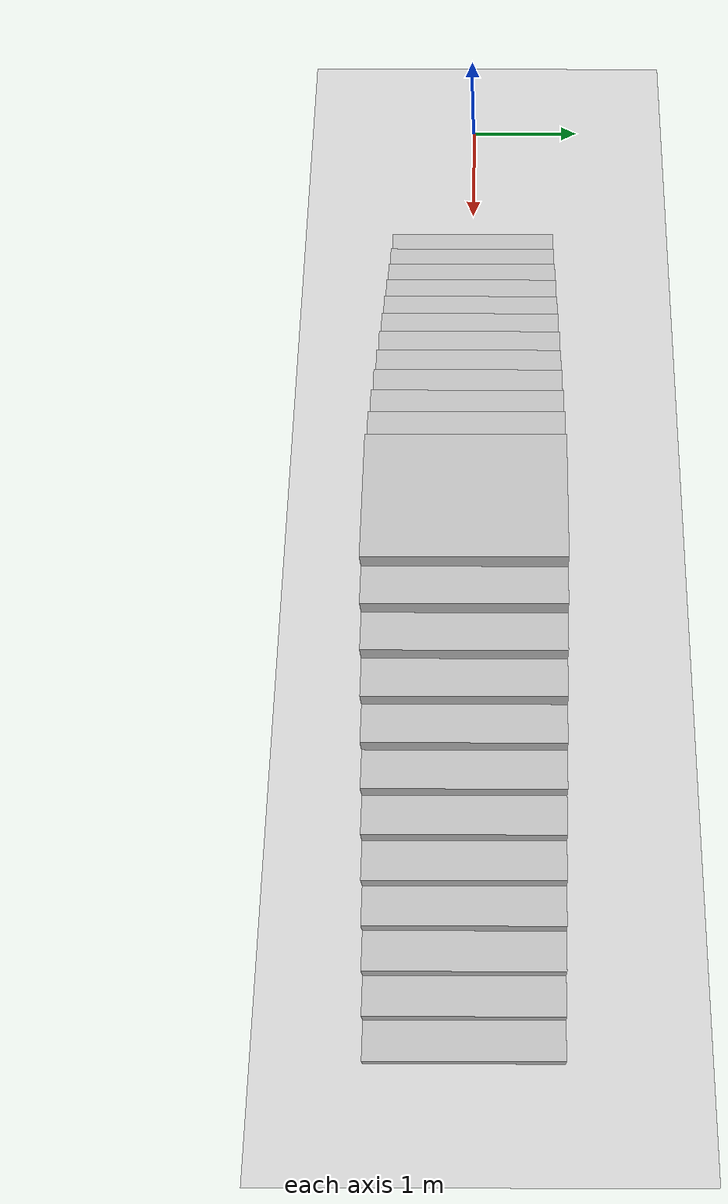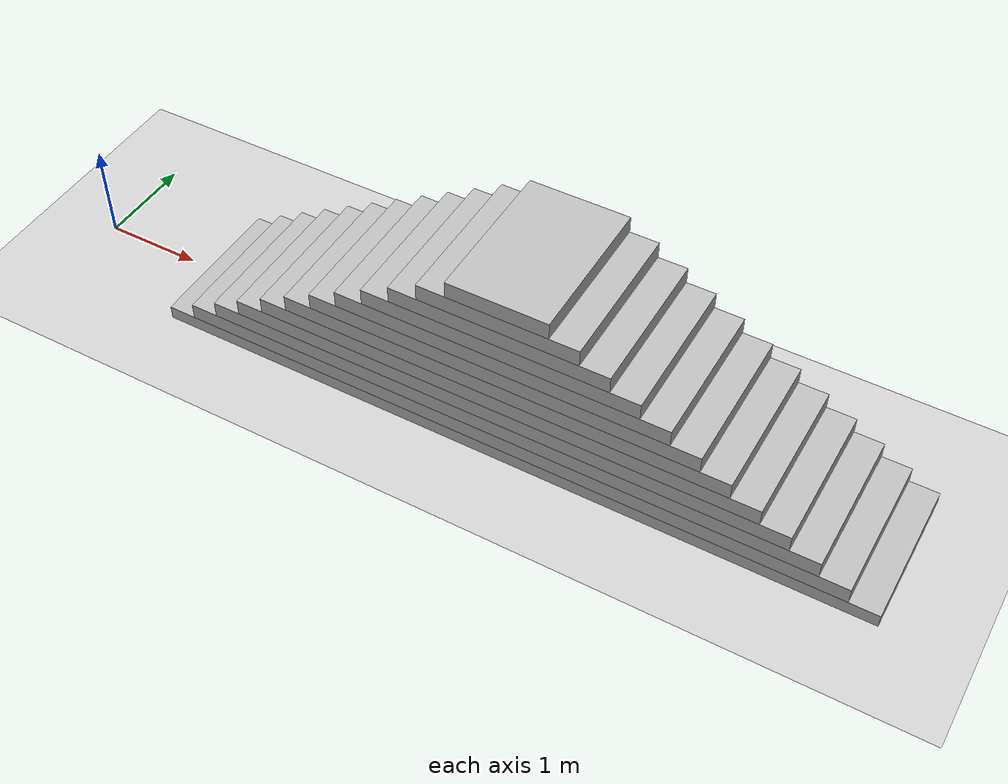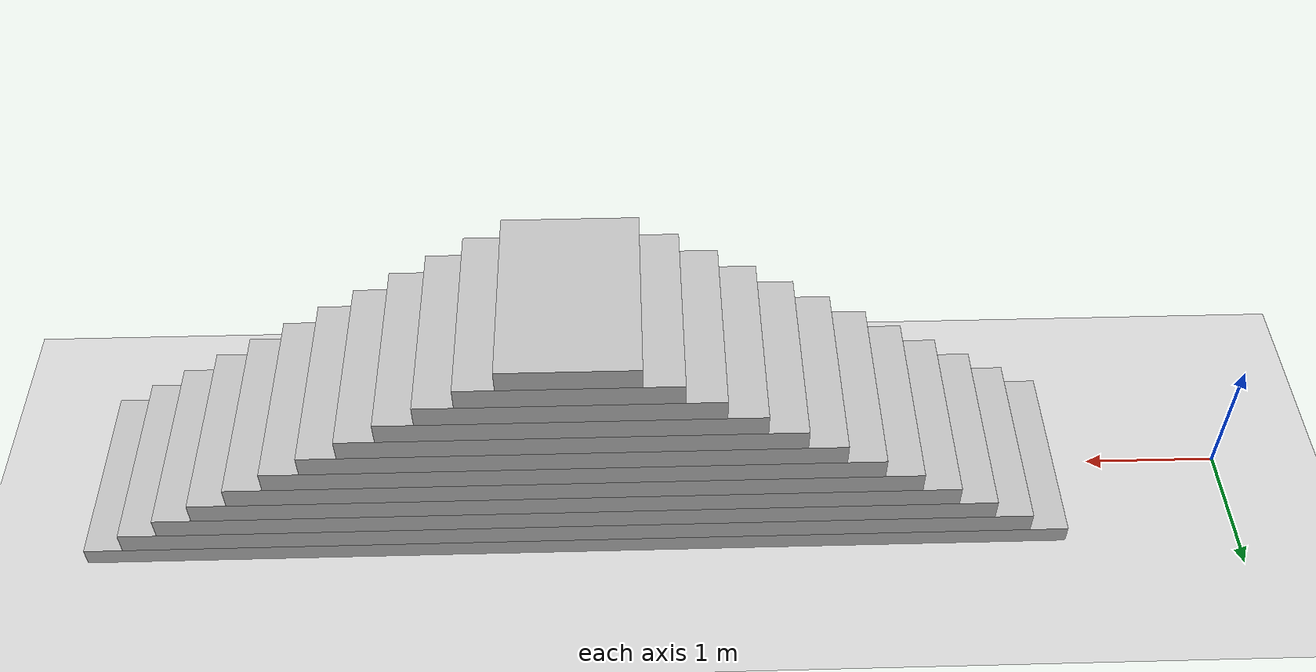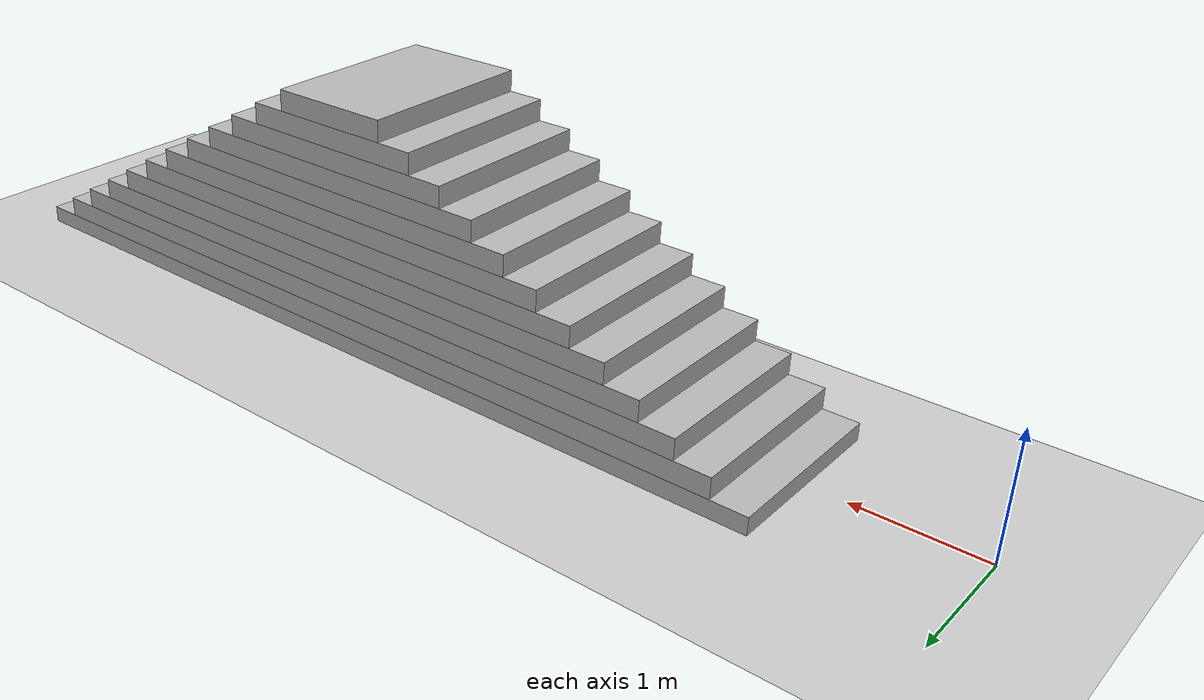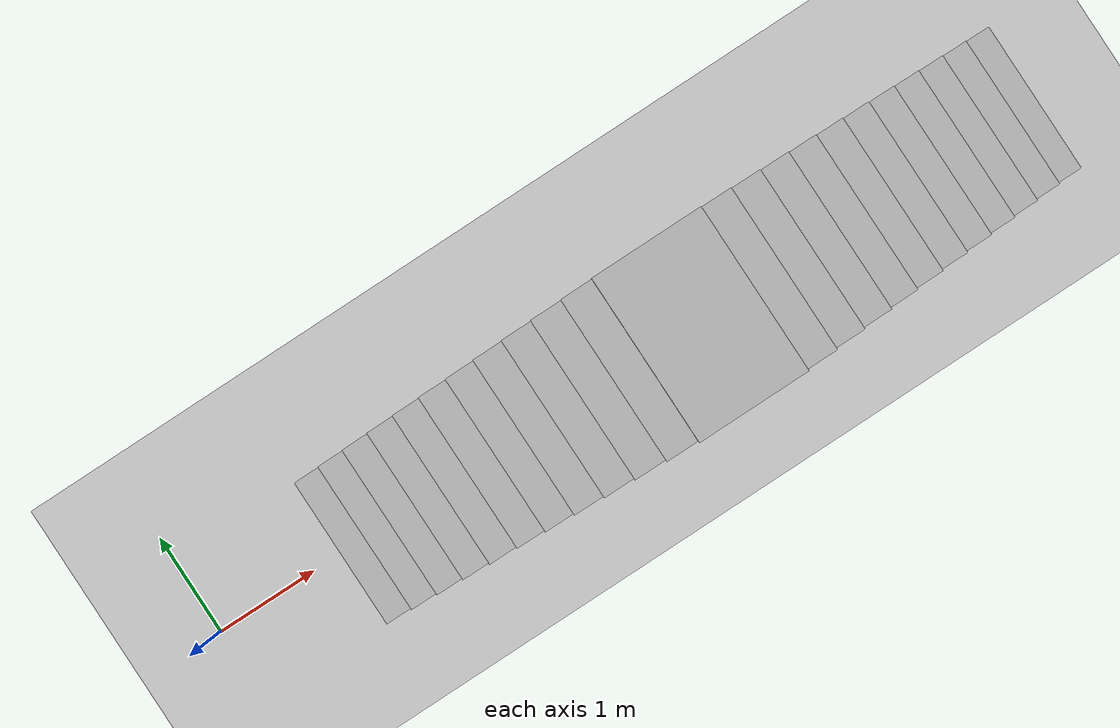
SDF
<?xml version="1.0" ?>
<sdf version="1.0">
  <world name="default">
    <include>
      <uri>model://ground_plane</uri>
    </include>
    <include>
      <uri>model://sun</uri>
    </include>
    <include>
      <uri>model://gazebo_worlds/models/lab_stairs_extra_large</uri>
      <pose>4 0 0.05 0 0 0</pose>
    </include>
    <physics type="ode">
      <gravity>0 0 -9.81</gravity>
    </physics>
  </world>
</sdf>

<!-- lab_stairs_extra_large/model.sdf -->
<sdf version="1.4">
  <model name="lab_stairs_extra_large">
    <pose>0 0 0.0 0 0 0</pose>
    <static>true</static>

     <link name="platform_b1">
      <pose>1 0 0.0 0 0 0</pose>
      <visual name="platform_b1_visual">
        <geometry>
          <box>
            <size>7.38 1.5 0.17</size>
          </box>
        </geometry>
      </visual>
      <collision name="platform_b1_collision">
        <geometry>
          <box>
            <size>7.38 1.5 0.17</size>
          </box>
        </geometry>
      </collision>
    </link>

     <link name="platform_b2">
      <pose>1 0 0.17 0 0 0</pose>
      <visual name="platform_b2_visual">
        <geometry>
          <box>
            <size>6.8 1.5 0.17</size>
          </box>
        </geometry>
      </visual>
      <collision name="platform_b2_collision">
        <geometry>
          <box>
            <size>6.8 1.5 0.17</size>
          </box>
        </geometry>
      </collision>
    </link>

     <link name="platform_b3">
      <pose>1 0 0.34 0 0 0</pose>
      <visual name="platform_b3_visual">
        <geometry>
          <box>
            <size>6.22 1.5 0.17</size>
          </box>
        </geometry>
      </visual>
      <collision name="platform_b3_collision">
        <geometry>
          <box>
            <size>6.22 1.5 0.17</size>
          </box>
        </geometry>
      </collision>
    </link>

     <link name="platform_b4">
      <pose>1 0 0.51 0 0 0</pose>
      <visual name="platform_b4_visual">
        <geometry>
          <box>
            <size>5.64 1.5 0.17</size>
          </box>
        </geometry>
      </visual>
      <collision name="platform_b4_collision">
        <geometry>
          <box>
            <size>5.64 1.5 0.17</size>
          </box>
        </geometry>
      </collision>
    </link>

     <link name="platform_b5">
      <pose>1 0 0.68 0 0 0</pose>
      <visual name="platform_b5_visual">
        <geometry>
          <box>
            <size>5.06 1.5 0.17</size>
          </box>
        </geometry>
      </visual>
      <collision name="platform_b5_collision">
        <geometry>
          <box>
            <size>5.06 1.5 0.17</size>
          </box>
        </geometry>
      </collision>
    </link>

     <link name="platform_b6">
      <pose>1 0 0.85 0 0 0</pose>
      <visual name="platform_b6_visual">
        <geometry>
          <box>
            <size>4.48 1.5 0.17</size>
          </box>
        </geometry>
      </visual>
      <collision name="platform_b6_collision">
        <geometry>
          <box>
            <size>4.48 1.5 0.17</size>
          </box>
        </geometry>
      </collision>
    </link>

     <link name="platform_b7">
      <pose>1 0 1.02 0 0 0</pose>
      <visual name="platform_b7_visual">
        <geometry>
          <box>
            <size>3.9 1.5 0.17</size>
          </box>
        </geometry>
      </visual>
      <collision name="platform_b7_collision">
        <geometry>
          <box>
            <size>3.9 1.5 0.17</size>
          </box>
        </geometry>
      </collision>
    </link>

     <link name="platform_b8">
      <pose>1 0 1.19 0 0 0</pose>
      <visual name="platform_b8_visual">
        <geometry>
          <box>
            <size>3.32 1.5 0.17</size>
          </box>
        </geometry>
      </visual>
      <collision name="platform_b8_collision">
        <geometry>
          <box>
            <size>3.32 1.5 0.17</size>
          </box>
        </geometry>
      </collision>
    </link>

    <link name="platform_b9">
      <pose>1 0 1.36 0 0 0</pose>
      <visual name="platform_b9_visual">
        <geometry>
          <box>
            <size>2.74 1.5 0.17</size>
          </box>
        </geometry>
      </visual>
      <collision name="platform_b9_collision">
        <geometry>
          <box>
            <size>2.74 1.5 0.17</size>
          </box>
        </geometry>
      </collision>
    </link>

    <link name="platform_b10">
      <pose>1 0 1.53 0 0 0</pose>
      <visual name="platform_b10_visual">
        <geometry>
          <box>
            <size>2.16 1.5 0.17</size>
          </box>
        </geometry>
      </visual>
      <collision name="platform_b10_collision">
        <geometry>
          <box>
            <size>2.16 1.5 0.17</size>
          </box>
        </geometry>
      </collision>
    </link>

    <link name="platform_b11">
      <pose>1 0 1.7 0 0 0</pose>
      <visual name="platform_b11_visual">
        <geometry>
          <box>
            <size>1.58 1.5 0.17</size>
          </box>
        </geometry>
      </visual>
      <collision name="platform_b11_collision">
        <geometry>
          <box>
            <size>1.58 1.5 0.17</size>
          </box>
        </geometry>
      </collision>
    </link>

    <link name="platform_b12">
      <pose>1 0 1.87 0 0 0</pose>
      <visual name="platform_b12_visual">
        <geometry>
          <box>
            <size>1 1.5 0.17</size>
          </box>
        </geometry>
      </visual>
      <collision name="platform_b12_collision">
        <geometry>
          <box>
            <size>1 1.5 0.17</size>
          </box>
        </geometry>
      </collision>
    </link>

  </model>
</sdf>
